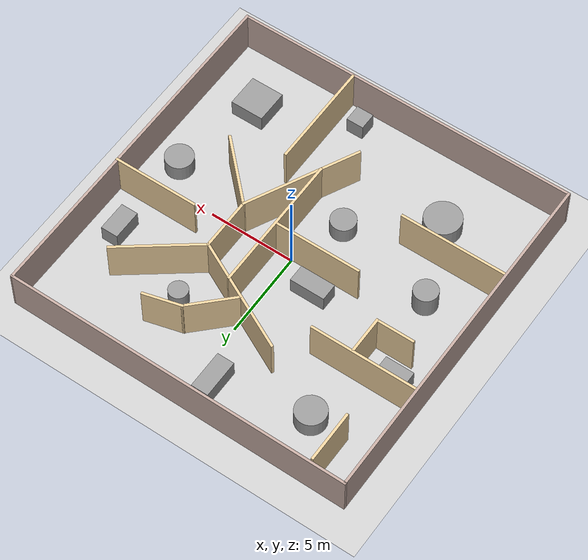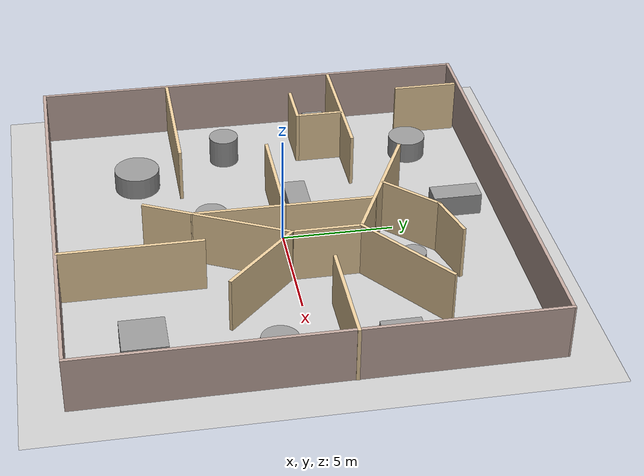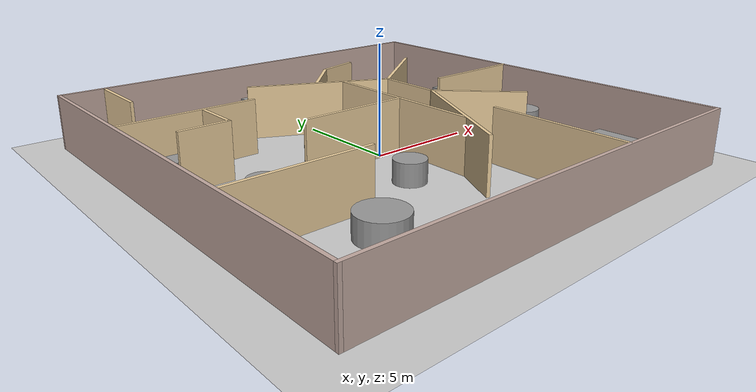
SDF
<sdf version="1.7">
 <world name="default">
  <light name="sun" type="directional">
   <pose>0 0 10 0 -0 0</pose>
   <diffuse>0.8 0.8 0.8 1</diffuse>
   <specular>0.2 0.2 0.2 1</specular>
   <attenuation>
    <range>1000</range>
    <constant>0.9</constant>
    <linear>0.01</linear>
    <quadratic>0.001</quadratic>
   </attenuation>
   <direction>-0.5 0.1 -0.9</direction>
   <spot><inner_angle>0</inner_angle><outer_angle>0</outer_angle><falloff>0</falloff></spot>
  </light>
  <model name="ground_plane">
   <static>1</static>
   <link name="link">
    <collision name="collision">
     <geometry><plane><normal>0 0 1</normal><size>100 100</size></plane></geometry>
     <surface><friction><ode><mu>100</mu><mu2>50</mu2></ode></friction></surface>
    </collision>
    <visual name="visual">
     <cast_shadows>0</cast_shadows>
     <geometry><plane><normal>0 0 1</normal><size>100 100</size></plane></geometry>
     <material>
      <script><uri>file://media/materials/scripts/gazebo.material</uri><name>Gazebo/Grey</name></script>
     </material>
    </visual>
   </link>
  </model>
  <gravity>0 0 -9.8</gravity>
  <magnetic_field>6e-06 2.3e-05 -4.2e-05</magnetic_field>
  <atmosphere type="adiabatic"/>
  <physics type="ode">
   <max_step_size>0.001</max_step_size>
   <real_time_factor>1</real_time_factor>
   <real_time_update_rate>1000</real_time_update_rate>
  </physics>
  <scene><ambient>0.4 0.4 0.4 1</ambient><background>0.7 0.7 0.7 1</background><shadows>1</shadows></scene>
  <spherical_coordinates>
   <surface_model>EARTH_WGS84</surface_model>
   <latitude_deg>0</latitude_deg>
   <longitude_deg>0</longitude_deg>
   <elevation>0</elevation>
   <heading_deg>0</heading_deg>
  </spherical_coordinates>
  <model name="Wall_10_10">
   <pose>-0.094338 0.017578 0 0 -0 0</pose>
   <link name="Wall_10">
    <collision name="Wall_10_Collision">
     <geometry><box><size>20.15 0.15 2.5</size></box></geometry>
     <pose>0 0 1.25 0 -0 0</pose>
    </collision>
    <visual name="Wall_10_Visual">
     <pose>0 0 1.25 0 -0 0</pose>
     <geometry><box><size>20.15 0.15 2.5</size></box></geometry>
     <material>
      <script><uri>file://media/materials/scripts/gazebo.material</uri><name>Gazebo/Grey</name></script>
      <ambient>0.760784 0.662745 0.627451 1</ambient>
     </material>
     <meta><layer>0</layer></meta>
    </visual>
    <pose>0 -10.0502 0 0 -0 3.14159</pose>
   </link>
   <link name="Wall_12">
    <collision name="Wall_12_Collision">
     <geometry><box><size>20.15 0.15 2.5</size></box></geometry>
     <pose>0 0 1.25 0 -0 0</pose>
    </collision>
    <visual name="Wall_12_Visual">
     <pose>0 0 1.25 0 -0 0</pose>
     <geometry><box><size>20.15 0.15 2.5</size></box></geometry>
     <material>
      <script><uri>file://media/materials/scripts/gazebo.material</uri><name>Gazebo/Grey</name></script>
      <ambient>0.760784 0.662745 0.627451 1</ambient>
     </material>
     <meta><layer>0</layer></meta>
    </visual>
    <pose>10 -0.050187 0 0 -0 1.5708</pose>
   </link>
   <link name="Wall_13">
    <collision name="Wall_13_Collision">
     <geometry><box><size>20.1502 0.15 2.5</size></box></geometry>
     <pose>0 0 1.25 0 -0 0</pose>
    </collision>
    <visual name="Wall_13_Visual">
     <pose>0 0 1.25 0 -0 0</pose>
     <geometry><box><size>20.1502 0.15 2.5</size></box></geometry>
     <material>
      <script><uri>file://media/materials/scripts/gazebo.material</uri><name>Gazebo/Grey</name></script>
      <ambient>0.760784 0.662745 0.627451 1</ambient>
     </material>
     <meta><layer>0</layer></meta>
    </visual>
    <pose>0 9.99981 0 0 -0 3.13659</pose>
   </link>
   <link name="Wall_7">
    <collision name="Wall_7_Collision">
     <geometry><box><size>20.15 0.15 2.5</size></box></geometry>
     <pose>0 0 1.25 0 -0 0</pose>
    </collision>
    <visual name="Wall_7_Visual">
     <pose>0 0 1.25 0 -0 0</pose>
     <geometry><box><size>20.15 0.15 2.5</size></box></geometry>
     <material>
      <script><uri>file://media/materials/scripts/gazebo.material</uri><name>Gazebo/Grey</name></script>
      <ambient>0.760784 0.662745 0.627451 1</ambient>
     </material>
     <meta><layer>0</layer></meta>
    </visual>
    <pose>-10 -0.050187 0 0 -0 1.5708</pose>
   </link>
   <static>1</static>
  </model>
  <model name="wall_in_luan">
   <pose>-0.012387 -0.064192 0 0 -0 0</pose>
   <link name="Wall_0">
    <collision name="Wall_0_Collision">
     <geometry><box><size>6.8582 0.15 2.5</size></box></geometry>
     <pose>0 0 1.25 0 -0 0</pose>
    </collision>
    <visual name="Wall_0_Visual">
     <pose>0 0 1.25 0 -0 0</pose>
     <geometry><box><size>6.8582 0.15 2.5</size></box></geometry>
     <material>
      <script><uri>file://media/materials/scripts/gazebo.material</uri><name>Gazebo/Grey</name></script>
      <ambient>0.921569 0.807843 0.615686 1</ambient>
     </material>
     <meta><layer>0</layer></meta>
    </visual>
    <pose>0.062 4.4575 0 0 -0 2.67794</pose>
   </link>
   <link name="Wall_10">
    <collision name="Wall_10_Collision">
     <geometry><box><size>4.39264 0.15 2.5</size></box></geometry>
     <pose>0 0 1.25 0 -0 0</pose>
    </collision>
    <visual name="Wall_10_Visual">
     <pose>0 0 1.25 0 -0 0</pose>
     <geometry><box><size>4.39264 0.15 2.5</size></box></geometry>
     <material>
      <script><uri>file://media/materials/scripts/gazebo.material</uri><name>Gazebo/Grey</name></script>
      <ambient>0.921569 0.807843 0.615686 1</ambient>
     </material>
     <meta><layer>0</layer></meta>
    </visual>
    <pose>4.562 -1.5425 0 0 -0 -0.785398</pose>
   </link>
   <link name="Wall_12">
    <collision name="Wall_12_Collision">
     <geometry><box><size>8.15 0.15 2.5</size></box></geometry>
     <pose>0 0 1.25 0 -0 0</pose>
    </collision>
    <visual name="Wall_12_Visual">
     <pose>0 0 1.25 0 -0 0</pose>
     <geometry><box><size>8.15 0.15 2.5</size></box></geometry>
     <material>
      <script><uri>file://media/materials/scripts/gazebo.material</uri><name>Gazebo/Grey</name></script>
      <ambient>0.921569 0.807843 0.615686 1</ambient>
     </material>
     <meta><layer>0</layer></meta>
    </visual>
    <pose>1.062 -0.0425 0 0 -0 -1.5708</pose>
   </link>
   <link name="Wall_15">
    <collision name="Wall_15_Collision">
     <geometry><box><size>5.15 0.15 2.5</size></box></geometry>
     <pose>0 0 1.25 0 -0 0</pose>
    </collision>
    <visual name="Wall_15_Visual">
     <pose>0 0 1.25 0 -0 0</pose>
     <geometry><box><size>5.15 0.15 2.5</size></box></geometry>
     <material>
      <script><uri>file://media/materials/scripts/gazebo.material</uri><name>Gazebo/Grey</name></script>
      <ambient>0.921569 0.807843 0.615686 1</ambient>
     </material>
     <meta><layer>0</layer></meta>
    </visual>
    <pose>-1.438 -0.0425 0 0 -0 3.14159</pose>
   </link>
   <link name="Wall_17">
    <collision name="Wall_17_Collision">
     <geometry><box><size>6.15 0.15 2.5</size></box></geometry>
     <pose>0 0 1.25 0 -0 0</pose>
    </collision>
    <visual name="Wall_17_Visual">
     <pose>0 0 1.25 0 -0 0</pose>
     <geometry><box><size>6.15 0.15 2.5</size></box></geometry>
     <material>
      <script><uri>file://media/materials/scripts/gazebo.material</uri><name>Gazebo/Grey</name></script>
      <ambient>0.921569 0.807843 0.615686 1</ambient>
     </material>
     <meta><layer>0</layer></meta>
    </visual>
    <pose>-6.938 3.9575 0 0 -0 0</pose>
   </link>
   <link name="Wall_2">
    <collision name="Wall_2_Collision">
     <geometry><box><size>3.15 0.15 2.5</size></box></geometry>
     <pose>0 0 1.25 0 -0 0</pose>
    </collision>
    <visual name="Wall_2_Visual">
     <pose>0 0 1.25 0 -0 0</pose>
     <geometry><box><size>3.15 0.15 2.5</size></box></geometry>
     <material>
      <script><uri>file://media/materials/scripts/gazebo.material</uri><name>Gazebo/Grey</name></script>
      <ambient>0.921569 0.807843 0.615686 1</ambient>
     </material>
     <meta><layer>0</layer></meta>
    </visual>
    <pose>3.062 1.4575 0 0 -0 -1.5708</pose>
   </link>
   <link name="Wall_20">
    <collision name="Wall_20_Collision">
     <geometry><box><size>2.25 0.15 2.5</size></box></geometry>
     <pose>0 0 1.25 0 -0 0</pose>
    </collision>
    <visual name="Wall_20_Visual">
     <pose>0 0 1.25 0 -0 0</pose>
     <geometry><box><size>2.25 0.15 2.5</size></box></geometry>
     <material>
      <script><uri>file://media/materials/scripts/gazebo.material</uri><name>Gazebo/Grey</name></script>
      <ambient>0.921569 0.807843 0.615686 1</ambient>
     </material>
     <meta><layer>0</layer></meta>
    </visual>
    <pose>-6.319 2.8605 0 0 -0 -1.5708</pose>
   </link>
   <link name="Wall_21">
    <collision name="Wall_21_Collision">
     <geometry><box><size>2.25 0.15 2.5</size></box></geometry>
     <pose>0 0 1.25 0 -0 0</pose>
    </collision>
    <visual name="Wall_21_Visual">
     <pose>0 0 1.25 0 -0 0</pose>
     <geometry><box><size>2.25 0.15 2.5</size></box></geometry>
     <material>
      <script><uri>file://media/materials/scripts/gazebo.material</uri><name>Gazebo/Grey</name></script>
      <ambient>0.921569 0.807843 0.615686 1</ambient>
     </material>
     <meta><layer>0</layer></meta>
    </visual>
    <pose>-7.369 1.8105 0 0 -0 3.14159</pose>
   </link>
   <link name="Wall_25">
    <collision name="Wall_25_Collision">
     <geometry><box><size>6.25 0.15 2.5</size></box></geometry>
     <pose>0 0 1.25 0 -0 0</pose>
    </collision>
    <visual name="Wall_25_Visual">
     <pose>0 0 1.25 0 -0 0</pose>
     <geometry><box><size>6.25 0.15 2.5</size></box></geometry>
     <material>
      <script><uri>file://media/materials/scripts/gazebo.material</uri><name>Gazebo/Grey</name></script>
      <ambient>0.921569 0.807843 0.615686 1</ambient>
     </material>
     <meta><layer>0</layer></meta>
    </visual>
    <pose>3.074 -6.8425 0 0 -0 -1.5708</pose>
   </link>
   <link name="Wall_27">
    <collision name="Wall_27_Collision">
     <geometry><box><size>5.15 0.15 2.5</size></box></geometry>
     <pose>0 0 1.25 0 -0 0</pose>
    </collision>
    <visual name="Wall_27_Visual">
     <pose>0 0 1.25 0 -0 0</pose>
     <geometry><box><size>5.15 0.15 2.5</size></box></geometry>
     <material>
      <script><uri>file://media/materials/scripts/gazebo.material</uri><name>Gazebo/Grey</name></script>
      <ambient>0.921569 0.807843 0.615686 1</ambient>
     </material>
     <meta><layer>0</layer></meta>
    </visual>
    <pose>5.062 4.4575 0 0 -0 0.643501</pose>
   </link>
   <link name="Wall_30">
    <collision name="Wall_30_Collision">
     <geometry><box><size>5 0.15 2.5</size></box></geometry>
     <pose>0 0 1.25 0 -0 0</pose>
    </collision>
    <visual name="Wall_30_Visual">
     <pose>0 0 1.25 0 -0 0</pose>
     <geometry><box><size>5 0.15 2.5</size></box></geometry>
     <material>
      <script><uri>file://media/materials/scripts/gazebo.material</uri><name>Gazebo/Grey</name></script>
      <ambient>0.921569 0.807843 0.615686 1</ambient>
     </material>
     <meta><layer>0</layer></meta>
    </visual>
    <pose>7.513 1.4125 0 0 -0 0</pose>
   </link>
   <link name="Wall_32">
    <collision name="Wall_32_Collision">
     <geometry><box><size>3 0.15 2.5</size></box></geometry>
     <pose>0 0 1.25 0 -0 0</pose>
    </collision>
    <visual name="Wall_32_Visual">
     <pose>0 0 1.25 0 -0 0</pose>
     <geometry><box><size>3 0.15 2.5</size></box></geometry>
     <material>
      <script><uri>file://media/materials/scripts/gazebo.material</uri><name>Gazebo/Grey</name></script>
      <ambient>0.921569 0.807843 0.615686 1</ambient>
     </material>
     <meta><layer>0</layer></meta>
    </visual>
    <pose>-8.099 8.4675 0 0 -0 1.5708</pose>
   </link>
   <link name="Wall_34">
    <collision name="Wall_34_Collision">
     <geometry><box><size>3 0.15 2.5</size></box></geometry>
     <pose>0 0 1.25 0 -0 0</pose>
    </collision>
    <visual name="Wall_34_Visual">
     <pose>0 0 1.25 0 -0 0</pose>
     <geometry><box><size>3 0.15 2.5</size></box></geometry>
     <material>
      <script><uri>file://media/materials/scripts/gazebo.material</uri><name>Gazebo/Grey</name></script>
      <ambient>0.921569 0.807843 0.615686 1</ambient>
     </material>
     <meta><layer>0</layer></meta>
    </visual>
    <pose>0.9845 5.6035 0 0 -0 0.785646</pose>
   </link>
   <link name="Wall_35">
    <collision name="Wall_35_Collision">
     <geometry><box><size>2.25 0.15 2.5</size></box></geometry>
     <pose>0 0 1.25 0 -0 0</pose>
    </collision>
    <visual name="Wall_35_Visual">
     <pose>0 0 1.25 0 -0 0</pose>
     <geometry><box><size>2.25 0.15 2.5</size></box></geometry>
     <material>
      <script><uri>file://media/materials/scripts/gazebo.material</uri><name>Gazebo/Grey</name></script>
      <ambient>0.921569 0.807843 0.615686 1</ambient>
     </material>
     <meta><layer>0</layer></meta>
    </visual>
    <pose>3.006 6.883 0 0 -0 0.261615</pose>
   </link>
   <link name="Wall_4">
    <collision name="Wall_4_Collision">
     <geometry><box><size>6.8582 0.15 2.5</size></box></geometry>
     <pose>0 0 1.25 0 -0 0</pose>
    </collision>
    <visual name="Wall_4_Visual">
     <pose>0 0 1.25 0 -0 0</pose>
     <geometry><box><size>6.8582 0.15 2.5</size></box></geometry>
     <material>
      <script><uri>file://media/materials/scripts/gazebo.material</uri><name>Gazebo/Grey</name></script>
      <ambient>0.921569 0.807843 0.615686 1</ambient>
     </material>
     <meta><layer>0</layer></meta>
    </visual>
    <pose>1.562 -3.0425 0 0 -0 -2.03444</pose>
   </link>
   <link name="Wall_8">
    <collision name="Wall_8_Collision">
     <geometry><box><size>6.15 0.15 2.5</size></box></geometry>
     <pose>0 0 1.25 0 -0 0</pose>
    </collision>
    <visual name="Wall_8_Visual">
     <pose>0 0 1.25 0 -0 0</pose>
     <geometry><box><size>6.15 0.15 2.5</size></box></geometry>
     <material>
      <script><uri>file://media/materials/scripts/gazebo.material</uri><name>Gazebo/Grey</name></script>
      <ambient>0.921569 0.807843 0.615686 1</ambient>
     </material>
     <meta><layer>0</layer></meta>
    </visual>
    <pose>-6.938 -4.0425 0 0 -0 0</pose>
   </link>
   <static>1</static>
  </model>
  <model name="scenarios_3">
   <link name="link_0">
    <inertial>
     <mass>4.31479</mass>
     <inertia><ixx>1.52315</ixx><ixy>0</ixy><ixz>0</ixz><iyy>1.52315</iyy><iyz>0</iyz><izz>2.32718</izz></inertia>
    </inertial>
    <pose>-5.02435 -6.04465 0 0 -0 0</pose>
    <visual name="visual">
     <geometry><cylinder><radius>1.0386</radius><length>1</length></cylinder></geometry>
     <material>
      <lighting>1</lighting>
      <script><uri>file://media/materials/scripts/gazebo.material</uri><name>Gazebo/Grey</name></script>
      <shader type="pixel"/>
     </material>
    </visual>
    <collision name="collision">
     <geometry><cylinder><radius>1.0386</radius><length>1</length></cylinder></geometry>
     <surface>
      <friction>
       <ode><mu>1</mu><mu2>1</mu2><fdir1>0 0 0</fdir1><slip1>0</slip1><slip2>0</slip2></ode>
       <torsional>
        <coefficient>1</coefficient>
        <patch_radius>0</patch_radius>
        <surface_radius>0</surface_radius>
        <use_patch_radius>1</use_patch_radius>
        <ode><slip>0</slip></ode>
       </torsional>
      </friction>
      <bounce><restitution_coefficient>0</restitution_coefficient><threshold>1e+06</threshold></bounce>
      <contact>
       <collide_without_contact>0</collide_without_contact>
       <collide_without_contact_bitmask>1</collide_without_contact_bitmask>
       <collide_bitmask>1</collide_bitmask>
       <ode>
        <soft_cfm>0</soft_cfm>
        <soft_erp>0.2</soft_erp>
        <kp>1e+13</kp>
        <kd>1</kd>
        <max_vel>0.01</max_vel>
        <min_depth>0</min_depth>
       </ode>
       <bullet>
        <split_impulse>1</split_impulse>
        <split_impulse_penetration_threshold>-0.01</split_impulse_penetration_threshold>
        <soft_cfm>0</soft_cfm>
        <soft_erp>0.2</soft_erp>
        <kp>1e+13</kp>
        <kd>1</kd>
       </bullet>
      </contact>
     </surface>
    </collision>
   </link>
   <link name="link_1">
    <inertial>
     <mass>3.67866</mass>
     <inertia><ixx>1.42446</ixx><ixy>0</ixy><ixz>0</ixz><iyy>1.44419</iyy><iyz>0</iyz><izz>2.25554</izz></inertia>
    </inertial>
    <pose>7.15095 -6.78657 0 0 -0 0</pose>
    <visual name="visual">
     <geometry><box><size>1.9264 1.90962 1</size></box></geometry>
     <material>
      <lighting>1</lighting>
      <script><uri>file://media/materials/scripts/gazebo.material</uri><name>Gazebo/Grey</name></script>
      <shader type="pixel"/>
     </material>
    </visual>
    <collision name="collision">
     <geometry><box><size>1.9264 1.90962 1</size></box></geometry>
     <surface>
      <friction>
       <ode><mu>1</mu><mu2>1</mu2><fdir1>0 0 0</fdir1><slip1>0</slip1><slip2>0</slip2></ode>
       <torsional>
        <coefficient>1</coefficient>
        <patch_radius>0</patch_radius>
        <surface_radius>0</surface_radius>
        <use_patch_radius>1</use_patch_radius>
        <ode><slip>0</slip></ode>
       </torsional>
      </friction>
      <bounce><restitution_coefficient>0</restitution_coefficient><threshold>1e+06</threshold></bounce>
      <contact>
       <collide_without_contact>0</collide_without_contact>
       <collide_without_contact_bitmask>1</collide_without_contact_bitmask>
       <collide_bitmask>1</collide_bitmask>
       <ode>
        <soft_cfm>0</soft_cfm>
        <soft_erp>0.2</soft_erp>
        <kp>1e+13</kp>
        <kd>1</kd>
        <max_vel>0.01</max_vel>
        <min_depth>0</min_depth>
       </ode>
       <bullet>
        <split_impulse>1</split_impulse>
        <split_impulse_penetration_threshold>-0.01</split_impulse_penetration_threshold>
        <soft_cfm>0</soft_cfm>
        <soft_erp>0.2</soft_erp>
        <kp>1e+13</kp>
        <kd>1</kd>
       </bullet>
      </contact>
     </surface>
    </collision>
   </link>
   <link name="link_10">
    <inertial>
     <mass>2.04768</mass>
     <inertia>
      <ixx>0.432703</ixx>
      <ixy>0</ixy>
      <ixz>0</ixz>
      <iyy>0.432703</iyy>
      <iyz>0</iyz>
      <izz>0.524125</izz>
     </inertia>
    </inertial>
    <pose>-0.915497 -3.04556 0 0 -0 0</pose>
    <visual name="visual">
     <geometry><cylinder><radius>0.715486</radius><length>1</length></cylinder></geometry>
     <material>
      <lighting>1</lighting>
      <script><uri>file://media/materials/scripts/gazebo.material</uri><name>Gazebo/Grey</name></script>
      <shader type="pixel"/>
     </material>
    </visual>
    <collision name="collision">
     <geometry><cylinder><radius>0.715486</radius><length>1</length></cylinder></geometry>
     <surface>
      <friction>
       <ode><mu>1</mu><mu2>1</mu2><fdir1>0 0 0</fdir1><slip1>0</slip1><slip2>0</slip2></ode>
       <torsional>
        <coefficient>1</coefficient>
        <patch_radius>0</patch_radius>
        <surface_radius>0</surface_radius>
        <use_patch_radius>1</use_patch_radius>
        <ode><slip>0</slip></ode>
       </torsional>
      </friction>
      <bounce><restitution_coefficient>0</restitution_coefficient><threshold>1e+06</threshold></bounce>
      <contact>
       <collide_without_contact>0</collide_without_contact>
       <collide_without_contact_bitmask>1</collide_without_contact_bitmask>
       <collide_bitmask>1</collide_bitmask>
       <ode>
        <soft_cfm>0</soft_cfm>
        <soft_erp>0.2</soft_erp>
        <kp>1e+13</kp>
        <kd>1</kd>
        <max_vel>0.01</max_vel>
        <min_depth>0</min_depth>
       </ode>
       <bullet>
        <split_impulse>1</split_impulse>
        <split_impulse_penetration_threshold>-0.01</split_impulse_penetration_threshold>
        <soft_cfm>0</soft_cfm>
        <soft_erp>0.2</soft_erp>
        <kp>1e+13</kp>
        <kd>1</kd>
       </bullet>
      </contact>
     </surface>
    </collision>
   </link>
   <link name="link_11">
    <inertial>
     <mass>1</mass>
     <inertia>
      <ixx>0.166667</ixx>
      <ixy>0</ixy>
      <ixz>0</ixz>
      <iyy>0.166667</iyy>
      <iyz>0</iyz>
      <izz>0.166667</izz>
     </inertia>
    </inertial>
    <pose>2.01675 -8.8864 0 0 -0 0</pose>
    <visual name="visual">
     <geometry><box><size>1 1 1</size></box></geometry>
     <material>
      <lighting>1</lighting>
      <script><uri>file://media/materials/scripts/gazebo.material</uri><name>Gazebo/Grey</name></script>
      <shader type="pixel"/>
     </material>
    </visual>
    <collision name="collision">
     <geometry><box><size>1 1 1</size></box></geometry>
     <surface>
      <friction>
       <ode><mu>1</mu><mu2>1</mu2><fdir1>0 0 0</fdir1><slip1>0</slip1><slip2>0</slip2></ode>
       <torsional>
        <coefficient>1</coefficient>
        <patch_radius>0</patch_radius>
        <surface_radius>0</surface_radius>
        <use_patch_radius>1</use_patch_radius>
        <ode><slip>0</slip></ode>
       </torsional>
      </friction>
      <bounce><restitution_coefficient>0</restitution_coefficient><threshold>1e+06</threshold></bounce>
      <contact>
       <collide_without_contact>0</collide_without_contact>
       <collide_without_contact_bitmask>1</collide_without_contact_bitmask>
       <collide_bitmask>1</collide_bitmask>
       <ode>
        <soft_cfm>0</soft_cfm>
        <soft_erp>0.2</soft_erp>
        <kp>1e+13</kp>
        <kd>1</kd>
        <max_vel>0.01</max_vel>
        <min_depth>0</min_depth>
       </ode>
       <bullet>
        <split_impulse>1</split_impulse>
        <split_impulse_penetration_threshold>-0.01</split_impulse_penetration_threshold>
        <soft_cfm>0</soft_cfm>
        <soft_erp>0.2</soft_erp>
        <kp>1e+13</kp>
        <kd>1</kd>
       </bullet>
      </contact>
     </surface>
    </collision>
   </link>
   <link name="link_2">
    <inertial>
     <mass>2.5594</mass>
     <inertia>
      <ixx>0.622687</ixx>
      <ixy>0</ixy>
      <ixz>0</ixz>
      <iyy>0.622687</iyy>
      <iyz>0</iyz>
      <izz>0.818808</izz>
     </inertia>
    </inertial>
    <pose>8.29101 -1.43049 0 0 -0 0</pose>
    <visual name="visual">
     <geometry><cylinder><radius>0.799902</radius><length>1</length></cylinder></geometry>
     <material>
      <lighting>1</lighting>
      <script><uri>file://media/materials/scripts/gazebo.material</uri><name>Gazebo/Grey</name></script>
      <shader type="pixel"/>
     </material>
    </visual>
    <collision name="collision">
     <geometry><cylinder><radius>0.799902</radius><length>1</length></cylinder></geometry>
     <surface>
      <friction>
       <ode><mu>1</mu><mu2>1</mu2><fdir1>0 0 0</fdir1><slip1>0</slip1><slip2>0</slip2></ode>
       <torsional>
        <coefficient>1</coefficient>
        <patch_radius>0</patch_radius>
        <surface_radius>0</surface_radius>
        <use_patch_radius>1</use_patch_radius>
        <ode><slip>0</slip></ode>
       </torsional>
      </friction>
      <bounce><restitution_coefficient>0</restitution_coefficient><threshold>1e+06</threshold></bounce>
      <contact>
       <collide_without_contact>0</collide_without_contact>
       <collide_without_contact_bitmask>1</collide_without_contact_bitmask>
       <collide_bitmask>1</collide_bitmask>
       <ode>
        <soft_cfm>0</soft_cfm>
        <soft_erp>0.2</soft_erp>
        <kp>1e+13</kp>
        <kd>1</kd>
        <max_vel>0.01</max_vel>
        <min_depth>0</min_depth>
       </ode>
       <bullet>
        <split_impulse>1</split_impulse>
        <split_impulse_penetration_threshold>-0.01</split_impulse_penetration_threshold>
        <soft_cfm>0</soft_cfm>
        <soft_erp>0.2</soft_erp>
        <kp>1e+13</kp>
        <kd>1</kd>
       </bullet>
      </contact>
     </surface>
    </collision>
   </link>
   <link name="link_3">
    <inertial>
     <mass>1.73964</mass>
     <inertia>
      <ixx>0.583702</ixx>
      <ixy>0</ixy>
      <ixz>0</ixz>
      <iyy>0.289941</iyy>
      <iyz>0</iyz>
      <izz>0.583702</izz>
     </inertia>
    </inertial>
    <pose>8.40126 3.55602 0 0 -0 0</pose>
    <visual name="visual">
     <geometry><box><size>1 1.73964 1</size></box></geometry>
     <material>
      <lighting>1</lighting>
      <script><uri>file://media/materials/scripts/gazebo.material</uri><name>Gazebo/Grey</name></script>
      <shader type="pixel"/>
     </material>
    </visual>
    <collision name="collision">
     <geometry><box><size>1 1.73964 1</size></box></geometry>
     <surface>
      <friction>
       <ode><mu>1</mu><mu2>1</mu2><fdir1>0 0 0</fdir1><slip1>0</slip1><slip2>0</slip2></ode>
       <torsional>
        <coefficient>1</coefficient>
        <patch_radius>0</patch_radius>
        <surface_radius>0</surface_radius>
        <use_patch_radius>1</use_patch_radius>
        <ode><slip>0</slip></ode>
       </torsional>
      </friction>
      <bounce><restitution_coefficient>0</restitution_coefficient><threshold>1e+06</threshold></bounce>
      <contact>
       <collide_without_contact>0</collide_without_contact>
       <collide_without_contact_bitmask>1</collide_without_contact_bitmask>
       <collide_bitmask>1</collide_bitmask>
       <ode>
        <soft_cfm>0</soft_cfm>
        <soft_erp>0.2</soft_erp>
        <kp>1e+13</kp>
        <kd>1</kd>
        <max_vel>0.01</max_vel>
        <min_depth>0</min_depth>
       </ode>
       <bullet>
        <split_impulse>1</split_impulse>
        <split_impulse_penetration_threshold>-0.01</split_impulse_penetration_threshold>
        <soft_cfm>0</soft_cfm>
        <soft_erp>0.2</soft_erp>
        <kp>1e+13</kp>
        <kd>1</kd>
       </bullet>
      </contact>
     </surface>
    </collision>
   </link>
   <link name="link_4">
    <inertial>
     <mass>1.18725</mass>
     <inertia>
      <ixx>0.187035</ixx>
      <ixy>0</ixy>
      <ixz>0</ixz>
      <iyy>0.187035</iyy>
      <iyz>0</iyz>
      <izz>0.176195</izz>
     </inertia>
    </inertial>
    <pose>3.46855 5.18806 0 0 -0 0</pose>
    <visual name="visual">
     <geometry><cylinder><radius>0.544804</radius><length>1</length></cylinder></geometry>
     <material>
      <lighting>1</lighting>
      <script><uri>file://media/materials/scripts/gazebo.material</uri><name>Gazebo/Grey</name></script>
      <shader type="pixel"/>
     </material>
    </visual>
    <collision name="collision">
     <geometry><cylinder><radius>0.544804</radius><length>1</length></cylinder></geometry>
     <surface>
      <friction>
       <ode><mu>1</mu><mu2>1</mu2><fdir1>0 0 0</fdir1><slip1>0</slip1><slip2>0</slip2></ode>
       <torsional>
        <coefficient>1</coefficient>
        <patch_radius>0</patch_radius>
        <surface_radius>0</surface_radius>
        <use_patch_radius>1</use_patch_radius>
        <ode><slip>0</slip></ode>
       </torsional>
      </friction>
      <bounce><restitution_coefficient>0</restitution_coefficient><threshold>1e+06</threshold></bounce>
      <contact>
       <collide_without_contact>0</collide_without_contact>
       <collide_without_contact_bitmask>1</collide_without_contact_bitmask>
       <collide_bitmask>1</collide_bitmask>
       <ode>
        <soft_cfm>0</soft_cfm>
        <soft_erp>0.2</soft_erp>
        <kp>1e+13</kp>
        <kd>1</kd>
        <max_vel>0.01</max_vel>
        <min_depth>0</min_depth>
       </ode>
       <bullet>
        <split_impulse>1</split_impulse>
        <split_impulse_penetration_threshold>-0.01</split_impulse_penetration_threshold>
        <soft_cfm>0</soft_cfm>
        <soft_erp>0.2</soft_erp>
        <kp>1e+13</kp>
        <kd>1</kd>
       </bullet>
      </contact>
     </surface>
    </collision>
   </link>
   <link name="link_5">
    <inertial>
     <mass>2.20952</mass>
     <inertia><ixx>1.08303</ixx><ixy>0</ixy><ixz>0</ixz><iyy>0.368253</iyy><iyz>0</iyz><izz>1.08303</izz></inertia>
    </inertial>
    <pose>-0.825033 8.16096 0 0 -0 0</pose>
    <visual name="visual">
     <geometry><box><size>1 2.20952 1</size></box></geometry>
     <material>
      <lighting>1</lighting>
      <script><uri>file://media/materials/scripts/gazebo.material</uri><name>Gazebo/Grey</name></script>
      <shader type="pixel"/>
     </material>
    </visual>
    <collision name="collision">
     <geometry><box><size>1 2.20952 1</size></box></geometry>
     <surface>
      <friction>
       <ode><mu>1</mu><mu2>1</mu2><fdir1>0 0 0</fdir1><slip1>0</slip1><slip2>0</slip2></ode>
       <torsional>
        <coefficient>1</coefficient>
        <patch_radius>0</patch_radius>
        <surface_radius>0</surface_radius>
        <use_patch_radius>1</use_patch_radius>
        <ode><slip>0</slip></ode>
       </torsional>
      </friction>
      <bounce><restitution_coefficient>0</restitution_coefficient><threshold>1e+06</threshold></bounce>
      <contact>
       <collide_without_contact>0</collide_without_contact>
       <collide_without_contact_bitmask>1</collide_without_contact_bitmask>
       <collide_bitmask>1</collide_bitmask>
       <ode>
        <soft_cfm>0</soft_cfm>
        <soft_erp>0.2</soft_erp>
        <kp>1e+13</kp>
        <kd>1</kd>
        <max_vel>0.01</max_vel>
        <min_depth>0</min_depth>
       </ode>
       <bullet>
        <split_impulse>1</split_impulse>
        <split_impulse_penetration_threshold>-0.01</split_impulse_penetration_threshold>
        <soft_cfm>0</soft_cfm>
        <soft_erp>0.2</soft_erp>
        <kp>1e+13</kp>
        <kd>1</kd>
       </bullet>
      </contact>
     </surface>
    </collision>
   </link>
   <link name="link_6">
    <inertial>
     <mass>2.96785</mass>
     <inertia>
      <ixx>0.797827</ixx>
      <ixy>0</ixy>
      <ixz>0</ixz>
      <iyy>0.797827</iyy>
      <iyz>0</iyz>
      <izz>1.10101</izz>
     </inertia>
    </inertial>
    <pose>-5.91562 7.06638 0 0 -0 0</pose>
    <visual name="visual">
     <geometry><cylinder><radius>0.86137</radius><length>1</length></cylinder></geometry>
     <material>
      <lighting>1</lighting>
      <script><uri>file://media/materials/scripts/gazebo.material</uri><name>Gazebo/Grey</name></script>
      <shader type="pixel"/>
     </material>
    </visual>
    <collision name="collision">
     <geometry><cylinder><radius>0.86137</radius><length>1</length></cylinder></geometry>
     <surface>
      <friction>
       <ode><mu>1</mu><mu2>1</mu2><fdir1>0 0 0</fdir1><slip1>0</slip1><slip2>0</slip2></ode>
       <torsional>
        <coefficient>1</coefficient>
        <patch_radius>0</patch_radius>
        <surface_radius>0</surface_radius>
        <use_patch_radius>1</use_patch_radius>
        <ode><slip>0</slip></ode>
       </torsional>
      </friction>
      <bounce><restitution_coefficient>0</restitution_coefficient><threshold>1e+06</threshold></bounce>
      <contact>
       <collide_without_contact>0</collide_without_contact>
       <collide_without_contact_bitmask>1</collide_without_contact_bitmask>
       <collide_bitmask>1</collide_bitmask>
       <ode>
        <soft_cfm>0</soft_cfm>
        <soft_erp>0.2</soft_erp>
        <kp>1e+13</kp>
        <kd>1</kd>
        <max_vel>0.01</max_vel>
        <min_depth>0</min_depth>
       </ode>
       <bullet>
        <split_impulse>1</split_impulse>
        <split_impulse_penetration_threshold>-0.01</split_impulse_penetration_threshold>
        <soft_cfm>0</soft_cfm>
        <soft_erp>0.2</soft_erp>
        <kp>1e+13</kp>
        <kd>1</kd>
       </bullet>
      </contact>
     </surface>
    </collision>
   </link>
   <link name="link_7">
    <inertial>
     <mass>1.65672</mass>
     <inertia>
      <ixx>0.27612</ixx>
      <ixy>0</ixy>
      <ixz>0</ixz>
      <iyy>0.516996</iyy>
      <iyz>0</iyz>
      <izz>0.516996</izz>
     </inertia>
    </inertial>
    <pose>-8.04717 2.95467 0 0 -0 0</pose>
    <visual name="visual">
     <geometry><box><size>1.65672 1 1</size></box></geometry>
     <material>
      <lighting>1</lighting>
      <script><uri>file://media/materials/scripts/gazebo.material</uri><name>Gazebo/Grey</name></script>
      <shader type="pixel"/>
     </material>
    </visual>
    <collision name="collision">
     <geometry><box><size>1.65672 1 1</size></box></geometry>
     <surface>
      <friction>
       <ode><mu>1</mu><mu2>1</mu2><fdir1>0 0 0</fdir1><slip1>0</slip1><slip2>0</slip2></ode>
       <torsional>
        <coefficient>1</coefficient>
        <patch_radius>0</patch_radius>
        <surface_radius>0</surface_radius>
        <use_patch_radius>1</use_patch_radius>
        <ode><slip>0</slip></ode>
       </torsional>
      </friction>
      <bounce><restitution_coefficient>0</restitution_coefficient><threshold>1e+06</threshold></bounce>
      <contact>
       <collide_without_contact>0</collide_without_contact>
       <collide_without_contact_bitmask>1</collide_without_contact_bitmask>
       <collide_bitmask>1</collide_bitmask>
       <ode>
        <soft_cfm>0</soft_cfm>
        <soft_erp>0.2</soft_erp>
        <kp>1e+13</kp>
        <kd>1</kd>
        <max_vel>0.01</max_vel>
        <min_depth>0</min_depth>
       </ode>
       <bullet>
        <split_impulse>1</split_impulse>
        <split_impulse_penetration_threshold>-0.01</split_impulse_penetration_threshold>
        <soft_cfm>0</soft_cfm>
        <soft_erp>0.2</soft_erp>
        <kp>1e+13</kp>
        <kd>1</kd>
       </bullet>
      </contact>
     </surface>
    </collision>
   </link>
   <link name="link_8">
    <inertial>
     <mass>2.95121</mass>
     <inertia>
      <ixx>0.966686</ixx>
      <ixy>0</ixy>
      <ixz>0</ixz>
      <iyy>0.966686</iyy>
      <iyz>0</iyz>
      <izz>0.68275</izz>
     </inertia>
    </inertial>
    <pose>-6.80437 -1.72477 0 0 -0 0</pose>
    <visual name="visual">
     <geometry><cylinder><radius>0.680215</radius><length>1.59455</length></cylinder></geometry>
     <material>
      <lighting>1</lighting>
      <script><uri>file://media/materials/scripts/gazebo.material</uri><name>Gazebo/Grey</name></script>
      <shader type="pixel"/>
     </material>
    </visual>
    <collision name="collision">
     <geometry><cylinder><radius>0.680215</radius><length>1.59455</length></cylinder></geometry>
     <surface>
      <friction>
       <ode><mu>1</mu><mu2>1</mu2><fdir1>0 0 0</fdir1><slip1>0</slip1><slip2>0</slip2></ode>
       <torsional>
        <coefficient>1</coefficient>
        <patch_radius>0</patch_radius>
        <surface_radius>0</surface_radius>
        <use_patch_radius>1</use_patch_radius>
        <ode><slip>0</slip></ode>
       </torsional>
      </friction>
      <bounce><restitution_coefficient>0</restitution_coefficient><threshold>1e+06</threshold></bounce>
      <contact>
       <collide_without_contact>0</collide_without_contact>
       <collide_without_contact_bitmask>1</collide_without_contact_bitmask>
       <collide_bitmask>1</collide_bitmask>
       <ode>
        <soft_cfm>0</soft_cfm>
        <soft_erp>0.2</soft_erp>
        <kp>1e+13</kp>
        <kd>1</kd>
        <max_vel>0.01</max_vel>
        <min_depth>0</min_depth>
       </ode>
       <bullet>
        <split_impulse>1</split_impulse>
        <split_impulse_penetration_threshold>-0.01</split_impulse_penetration_threshold>
        <soft_cfm>0</soft_cfm>
        <soft_erp>0.2</soft_erp>
        <kp>1e+13</kp>
        <kd>1</kd>
       </bullet>
      </contact>
     </surface>
    </collision>
   </link>
   <link name="link_9">
    <inertial>
     <mass>2.03597</mass>
     <inertia><ixx>0.339328</ixx><ixy>0</ixy><ixz>0</ixz><iyy>0.87295</iyy><iyz>0</iyz><izz>0.87295</izz></inertia>
    </inertial>
    <pose>-1.7965 0.992333 0 0 -0 0</pose>
    <visual name="visual">
     <geometry><box><size>2.03597 1 1</size></box></geometry>
     <material>
      <lighting>1</lighting>
      <script><uri>file://media/materials/scripts/gazebo.material</uri><name>Gazebo/Grey</name></script>
      <shader type="pixel"/>
     </material>
    </visual>
    <collision name="collision">
     <geometry><box><size>2.03597 1 1</size></box></geometry>
     <surface>
      <friction>
       <ode><mu>1</mu><mu2>1</mu2><fdir1>0 0 0</fdir1><slip1>0</slip1><slip2>0</slip2></ode>
       <torsional>
        <coefficient>1</coefficient>
        <patch_radius>0</patch_radius>
        <surface_radius>0</surface_radius>
        <use_patch_radius>1</use_patch_radius>
        <ode><slip>0</slip></ode>
       </torsional>
      </friction>
      <bounce><restitution_coefficient>0</restitution_coefficient><threshold>1e+06</threshold></bounce>
      <contact>
       <collide_without_contact>0</collide_without_contact>
       <collide_without_contact_bitmask>1</collide_without_contact_bitmask>
       <collide_bitmask>1</collide_bitmask>
       <ode>
        <soft_cfm>0</soft_cfm>
        <soft_erp>0.2</soft_erp>
        <kp>1e+13</kp>
        <kd>1</kd>
        <max_vel>0.01</max_vel>
        <min_depth>0</min_depth>
       </ode>
       <bullet>
        <split_impulse>1</split_impulse>
        <split_impulse_penetration_threshold>-0.01</split_impulse_penetration_threshold>
        <soft_cfm>0</soft_cfm>
        <soft_erp>0.2</soft_erp>
        <kp>1e+13</kp>
        <kd>1</kd>
       </bullet>
      </contact>
     </surface>
    </collision>
   </link>
   <static>0</static>
   <pose>-0.169929 -0.007465 0.5 0 -0 0</pose>
  </model>
 </world>
</sdf>
